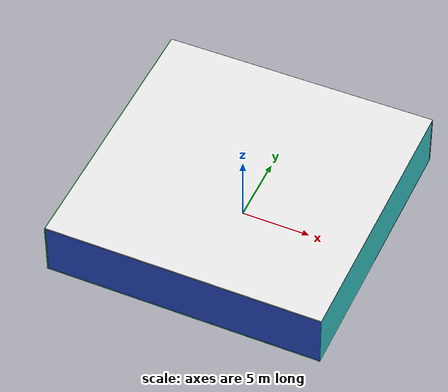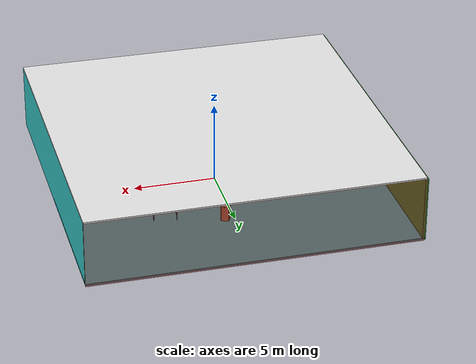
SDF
<sdf version="1.4">
 <world name="default">
  <physics type="ode">
   <max_step_size>0.001</max_step_size>
   <real_time_factor>1</real_time_factor>
   <real_time_update_rate>1000</real_time_update_rate>
   <gravity>0 0 -9.8</gravity>
  </physics>
  <scene><ambient>0.4 0.4 0.4 1</ambient><background>0.7 0.7 0.7 1</background><shadows>1</shadows></scene>
  <model name="Surrounding">
   <static>1</static>
   <link name="Ceiling">
    <collision name="Ceiling_Collision"><geometry><box><size>20 20 0.1</size></box></geometry></collision>
    <visual name="Ceiling_Visual">
     <geometry><box><size>20 20 0.1</size></box></geometry>
     <material>
      <script><uri>file://media/materials/scripts/gazebo.material</uri><name>Gazebo/WhiteGlow</name></script>
     </material>
    </visual>
    <pose>0 0 4.05 0 0 0</pose>
   </link>
   <link name="Wall_South">
    <collision name="Wall_South_Collision">
     <geometry><box><size>20 0 4</size></box></geometry>
     <pose>0 0 2 0 -0 0</pose>
    </collision>
    <visual name="Wall_South_Visual">
     <pose>0 0 2 0 -0 0</pose>
     <geometry><box><size>20 0 4</size></box></geometry>
     <material>
      <script><uri>file://media/materials/scripts/gazebo.material</uri><name>Gazebo/BlueLaser</name></script>
     </material>
    </visual>
    <velocity_decay><linear>0</linear><angular>0</angular></velocity_decay>
    <pose>0 -10 0 0 -0 0</pose>
   </link>
   <link name="Wall_East">
    <collision name="Wall_21_Collision">
     <geometry><box><size>20 0 4</size></box></geometry>
     <pose>0 0 2 0 -0 0</pose>
    </collision>
    <visual name="Wall_21_Visual">
     <pose>0 0 2 0 -0 0</pose>
     <geometry><box><size>20 0 4</size></box></geometry>
     <material>
      <script><uri>file://media/materials/scripts/gazebo.material</uri><name>Gazebo/Turquoise</name></script>
     </material>
    </visual>
    <velocity_decay><linear>0</linear><angular>0</angular></velocity_decay>
    <pose>10 0 0 0 -0 1.5708</pose>
   </link>
   <link name="Wall_North">
    <collision name="Wall_22_Collision">
     <geometry><box><size>20 0.2 4</size></box></geometry>
     <pose>0 0 2 0 -0 0</pose>
    </collision>
    <visual name="Wall_22_Visual">
     <pose>0 0 2 0 -0 0</pose>
     <geometry><box><size>20 0.2 4</size></box></geometry>
     <material>
      <script><uri>file://media/materials/scripts/gazebo.material</uri><name>Gazebo/RedTransparent</name></script>
     </material>
    </visual>
    <velocity_decay><linear>0</linear><angular>0</angular></velocity_decay>
    <pose>0 10 0 0 -0 0</pose>
   </link>
   <link name="Wall_West">
    <collision name="Wall_23_Collision">
     <geometry><box><size>20 0.2 4</size></box></geometry>
     <pose>0 0 2 0 -0 0</pose>
    </collision>
    <visual name="Wall_23_Visual">
     <pose>0 0 2 0 -0 0</pose>
     <geometry><box><size>20 0.2 4</size></box></geometry>
     <material>
      <script><uri>file://media/materials/scripts/gazebo.material</uri><name>Gazebo/GreenGlow</name></script>
     </material>
    </visual>
    <velocity_decay><linear>0</linear><angular>0</angular></velocity_decay>
    <pose>-10 0 0 0 0 -1.5708</pose>
   </link>
   <link name="Ground_link">
    <collision name="collision">
     <pose>0 0 .05 0 -0 0</pose>
     <geometry><box><size>20 20 0.1</size></box></geometry>
    </collision>
    <visual name="visual">
     <pose>0 0 .05 0 -0 0</pose>
     <geometry><box><size>20 20 0.1</size></box></geometry>
     <material>
      <script><uri>file://media/materials/scripts/gazebo.material</uri><name>Gazebo/Turquoise</name></script>
     </material>
    </visual>
   </link>
   <static>1</static>
  </model>
  <spherical_coordinates>
   <surface_model>EARTH_WGS84</surface_model>
   <latitude_deg>0</latitude_deg>
   <longitude_deg>0</longitude_deg>
   <elevation>0</elevation>
   <heading_deg>0</heading_deg>
  </spherical_coordinates>
  <light name="lightball_0" type="diffuse">
   <diffuse>0.8 0.8 0.8 1</diffuse>
   <specular>0.2 0.2 0.2 1</specular>
   <attenuation>
    <range>100</range>
    <constant>0.7</constant>
    <linear>0.01</linear>
    <quadratic>0.001</quadratic>
   </attenuation>
   <direction>-0.5 0.1 -0.9</direction>
   <pose>-7.53746787379 -2.62742450167 3.29254285929 0 0 0</pose>
  </light>
  <light name="lightball_1" type="diffuse">
   <diffuse>0.8 0.8 0.8 1</diffuse>
   <specular>0.2 0.2 0.2 1</specular>
   <attenuation>
    <range>100</range>
    <constant>0.7</constant>
    <linear>0.01</linear>
    <quadratic>0.001</quadratic>
   </attenuation>
   <direction>-0.5 0.1 -0.9</direction>
   <pose>-3.41802707899 -1.54042022033 2.14997333021 0 0 0</pose>
  </light>
  <light name="lightball_2" type="diffuse">
   <diffuse>0.8 0.8 0.8 1</diffuse>
   <specular>0.2 0.2 0.2 1</specular>
   <attenuation>
    <range>100</range>
    <constant>0.7</constant>
    <linear>0.01</linear>
    <quadratic>0.001</quadratic>
   </attenuation>
   <direction>-0.5 0.1 -0.9</direction>
   <pose>-5.90884581743 -4.58841538105 0.623708003857 0 0 0</pose>
  </light>
  <light name="lightball_3" type="diffuse">
   <diffuse>0.8 0.8 0.8 1</diffuse>
   <specular>0.2 0.2 0.2 1</specular>
   <attenuation>
    <range>100</range>
    <constant>0.7</constant>
    <linear>0.01</linear>
    <quadratic>0.001</quadratic>
   </attenuation>
   <direction>-0.5 0.1 -0.9</direction>
   <pose>-7.13011862574 3.44720810885 2.45149359907 0 0 0</pose>
  </light>
  <light name="lightball_4" type="diffuse">
   <diffuse>0.8 0.8 0.8 1</diffuse>
   <specular>0.2 0.2 0.2 1</specular>
   <attenuation>
    <range>100</range>
    <constant>0.7</constant>
    <linear>0.01</linear>
    <quadratic>0.001</quadratic>
   </attenuation>
   <direction>-0.5 0.1 -0.9</direction>
   <pose>-9.56207243484 1.69671721714 3.71707221111 0 0 0</pose>
  </light>
  <light name="lightball_5" type="diffuse">
   <diffuse>0.8 0.8 0.8 1</diffuse>
   <specular>0.2 0.2 0.2 1</specular>
   <attenuation>
    <range>100</range>
    <constant>0.7</constant>
    <linear>0.01</linear>
    <quadratic>0.001</quadratic>
   </attenuation>
   <direction>-0.5 0.1 -0.9</direction>
   <pose>0.529682717487 -4.25515272321 2.7315363004 0 0 0</pose>
  </light>
  <light name="lightball_6" type="diffuse">
   <diffuse>0.8 0.8 0.8 1</diffuse>
   <specular>0.2 0.2 0.2 1</specular>
   <attenuation>
    <range>100</range>
    <constant>0.7</constant>
    <linear>0.01</linear>
    <quadratic>0.001</quadratic>
   </attenuation>
   <direction>-0.5 0.1 -0.9</direction>
   <pose>-4.00167114061 8.81212953877 2.80608686337 0 0 0</pose>
  </light>
  <light name="lightball_7" type="diffuse">
   <diffuse>0.8 0.8 0.8 1</diffuse>
   <specular>0.2 0.2 0.2 1</specular>
   <attenuation>
    <range>100</range>
    <constant>0.7</constant>
    <linear>0.01</linear>
    <quadratic>0.001</quadratic>
   </attenuation>
   <direction>-0.5 0.1 -0.9</direction>
   <pose>2.20949429048 1.23290143149 2.32988723856 0 0 0</pose>
  </light>
  <light name="lightball_8" type="diffuse">
   <diffuse>0.8 0.8 0.8 1</diffuse>
   <specular>0.2 0.2 0.2 1</specular>
   <attenuation>
    <range>100</range>
    <constant>0.7</constant>
    <linear>0.01</linear>
    <quadratic>0.001</quadratic>
   </attenuation>
   <direction>-0.5 0.1 -0.9</direction>
   <pose>-7.28099170038 -2.53876209961 1.89762803983 0 0 0</pose>
  </light>
  <light name="lightball_9" type="diffuse">
   <diffuse>0.8 0.8 0.8 1</diffuse>
   <specular>0.2 0.2 0.2 1</specular>
   <attenuation>
    <range>100</range>
    <constant>0.7</constant>
    <linear>0.01</linear>
    <quadratic>0.001</quadratic>
   </attenuation>
   <direction>-0.5 0.1 -0.9</direction>
   <pose>-4.33320827097 -7.66822014484 1.20867068491 0 0 0</pose>
  </light>
  <light name="lightball_10" type="diffuse">
   <diffuse>0.8 0.8 0.8 1</diffuse>
   <specular>0.2 0.2 0.2 1</specular>
   <attenuation>
    <range>100</range>
    <constant>0.7</constant>
    <linear>0.01</linear>
    <quadratic>0.001</quadratic>
   </attenuation>
   <direction>-0.5 0.1 -0.9</direction>
   <pose>-7.37256162273 -1.20311273536 1.2118231376 0 0 0</pose>
  </light>
  <light name="lightball_11" type="diffuse">
   <diffuse>0.8 0.8 0.8 1</diffuse>
   <specular>0.2 0.2 0.2 1</specular>
   <attenuation>
    <range>100</range>
    <constant>0.7</constant>
    <linear>0.01</linear>
    <quadratic>0.001</quadratic>
   </attenuation>
   <direction>-0.5 0.1 -0.9</direction>
   <pose>2.87601806895 -8.71865991508 2.74299344617 0 0 0</pose>
  </light>
  <include><uri>model://cabinet</uri><pose>0.601164886841 5.0322712879 0 0 0 1.11725245769</pose></include>
  <include>
   <uri>model://robocup_3Dsim_goal</uri>
   <pose>3.67971002572 -1.32594818118 0 0 0 0.0499726855882</pose>
  </include>
  <include><uri>model://table</uri><pose>4.02164935311 3.93541499764 0 0 0 2.95806399737</pose></include>
  <include><uri>model://cabinet</uri><pose>6.36543779029 -4.14688933969 0 0 0 0.360300549537</pose></include>
 </world>
</sdf>

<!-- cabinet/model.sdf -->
<sdf version="1.5">
  <model name="cabinet">
    <static>true</static>
    <link name="cabinet_bottom_plate">
      <inertial>
        <pose>0 0 -1 0 0 0</pose>
        <inertia>
          <ixx>2.050000</ixx>
          <ixy>0</ixy>
          <ixz>0</ixz>
          <iyy>2.050000</iyy>
          <iyz>0</iyz>
          <izz>2.050000</izz>
        </inertia>
        <mass>25.000000</mass>
      </inertial>
      <collision name="cabinet_bottom_plate_geom">
        <pose>0 0 0.010000 0 0 0</pose>
        <geometry>
          <box>
            <size>0.450000 0.450000 0.020000</size>
          </box>
        </geometry>
      </collision>
      <visual name="cabinet_bottom_plate_geom_visual">
        <pose>0 0 0.010000 0 0 0</pose>
        <geometry>
          <box>
            <size>0.450000 0.450000 0.020000</size>
          </box>
        </geometry>
        <material>
          <script>
            <uri>model://media/materials/scripts/gazebo.material</uri>
            <name>Gazebo/Wood</name>
          </script>
        </material>
      </visual>
      <collision name="cabinet_bottom_plate_geom_cabinet_back_plate">
        <pose>0.235000 0 0.510000 0 0 0</pose>
        <geometry>
          <box>
            <size>0.020000 0.450000 1.020000</size>
          </box>
        </geometry>
      </collision>
      <visual name="cabinet_bottom_plate_geom_cabinet_back_plate_visual">
        <pose>0.235000 0 0.510000 0 0 0</pose>
        <geometry>
          <box>
            <size>0.020000 0.450000 1.020000</size>
          </box>
        </geometry>
        <material>
          <script>
            <uri>model://media/materials/scripts/gazebo.material</uri>
            <name>Gazebo/Wood</name>
          </script>
        </material>
      </visual>
      <collision name="cabinet_bottom_plate_geom_cabinet_left_plate">
        <pose>0 0.235000 0.510000 0 0 0</pose>
        <geometry>
          <box>
            <size>0.450000 0.020000 1.020000</size>
          </box>
        </geometry>
      </collision>
      <visual name="cabinet_bottom_plate_geom_cabinet_left_plate_visual">
        <pose>0 0.235000 0.510000 0 0 0</pose>
        <geometry>
          <box>
            <size>0.450000 0.020000 1.020000</size>
          </box>
        </geometry>
        <material>
          <script>
            <uri>model://media/materials/scripts/gazebo.material</uri>
            <name>Gazebo/Wood</name>
          </script>
        </material>
      </visual>
      <collision name="cabinet_bottom_plate_geom_cabinet_middle_plate">
        <pose>0 0 0.510000 0 0 0</pose>
        <geometry>
          <box>
            <size>0.450000 0.450000 0.020000</size>
          </box>
        </geometry>
      </collision>
      <visual name="cabinet_bottom_plate_geom_cabinet_middle_plate_visual">
        <pose>0 0 0.510000 0 0 0</pose>
        <geometry>
          <box>
            <size>0.450000 0.450000 0.020000</size>
          </box>
        </geometry>
        <material>
          <script>
            <uri>model://media/materials/scripts/gazebo.material</uri>
            <name>Gazebo/Wood</name>
          </script>
        </material>
      </visual>
      <collision name="cabinet_bottom_plate_geom_cabinet_right_plate">
        <pose>0 -0.235000 0.510000 0 0 0</pose>
        <geometry>
          <box>
            <size>0.450000 0.020000 1.020000</size>
          </box>
        </geometry>
      </collision>
      <visual name="cabinet_bottom_plate_geom_cabinet_right_plate_visual">
        <pose>0 -0.235000 0.510000 0 0 0</pose>
        <geometry>
          <box>
            <size>0.450000 0.020000 1.020000</size>
          </box>
        </geometry>
        <material>
          <script>
            <uri>model://media/materials/scripts/gazebo.material</uri>
            <name>Gazebo/Wood</name>
          </script>
        </material>
      </visual>
      <collision name="cabinet_bottom_plate_geom_cabinet_top_plate">
        <pose>0 0 1.010000 0 0 0</pose>
        <geometry>
          <box>
            <size>0.450000 0.450000 0.020000</size>
          </box>
        </geometry>
      </collision>
      <visual name="cabinet_bottom_plate_geom_cabinet_top_plate_visual">
        <pose>0 0 1.010000 0 0 0</pose>
        <geometry>
          <box>
            <size>0.450000 0.450000 0.020000</size>
          </box>
        </geometry>
        <material>
          <script>
            <uri>model://media/materials/scripts/gazebo.material</uri>
            <name>Gazebo/Wood</name>
          </script>
        </material>
      </visual>
    </link>
  </model>
</sdf>

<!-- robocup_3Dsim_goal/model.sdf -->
<sdf version="1.5">
  <model name="robocup_3d_goal">
    <static>true</static>
    <link name="left_post">
      <pose>0 1.05 0.45 0 0 0</pose>
      <collision name="collision">
        <geometry>
          <cylinder>
            <radius>0.05</radius>
            <length>0.9</length>
          </cylinder>
        </geometry>
      </collision>
      <visual name="visual">
        <geometry>
          <cylinder>
            <radius>0.05</radius>
            <length>0.9</length>
          </cylinder>
        </geometry>
        <material>
          <script>
            <uri>file://media/materials/scripts/gazebo.material</uri>
            <name>Gazebo/ZincYellow</name>
          </script>
        </material>
      </visual>
    </link>
    <link name="left_support_horiz_lower">
      <pose>0.30 1.05 0.01 0 0 0</pose>
      <collision name="collision">
        <geometry>
          <box>
            <size>0.50 0.02 0.02</size>
          </box>
        </geometry>
      </collision>
      <visual name="visual">
        <geometry>
          <box>
            <size>0.50 0.02 0.02</size>
          </box>
        </geometry>
        <material>
          <script>
            <uri>file://media/materials/scripts/gazebo.material</uri>
            <name>Gazebo/White</name>
          </script>
        </material>
      </visual>
    </link>
    <link name="left_support_horiz_upper">
      <pose>0.30 1.05 0.79 0 0 0</pose>
      <collision name="collision">
        <geometry>
          <box>
            <size>0.50 0.02 0.02</size>
          </box>
        </geometry>
      </collision>
      <visual name="visual">
        <geometry>
          <box>
            <size>0.50 0.02 0.02</size>
          </box>
        </geometry>
        <material>
          <script>
            <uri>file://media/materials/scripts/gazebo.material</uri>
            <name>Gazebo/White</name>
          </script>
        </material>
      </visual>
    </link>
    <link name="left_support_vertical">
      <pose>0.56 1.05 0.4 0 1.5708 0</pose>
      <collision name="collision">
        <geometry>
          <box>
            <size>0.80 0.02 0.02</size>
          </box>
        </geometry>
      </collision>
      <visual name="visual">
        <geometry>
          <box>
            <size>0.80 0.02 0.02</size>
          </box>
        </geometry>
        <material>
          <script>
            <uri>file://media/materials/scripts/gazebo.material</uri>
            <name>Gazebo/White</name>
          </script>
        </material>
      </visual>
    </link>
    <link name="right_support_horiz_lower">
      <pose>0.30 -1.05 0.01 0 0 0</pose>
      <collision name="collision">
        <geometry>
          <box>
            <size>0.50 0.02 0.02</size>
          </box>
        </geometry>
      </collision>
      <visual name="visual">
        <geometry>
          <box>
            <size>0.50 0.02 0.02</size>
          </box>
        </geometry>
        <material>
          <script>
            <uri>file://media/materials/scripts/gazebo.material</uri>
            <name>Gazebo/White</name>
          </script>
        </material>
      </visual>
    </link>
    <link name="right_support_horiz_upper">
      <pose>0.30 -1.05 0.79 0 0 0</pose>
      <collision name="collision">
        <geometry>
          <box>
            <size>0.50 0.02 0.02</size>
          </box>
        </geometry>
      </collision>
      <visual name="visual">
        <geometry>
          <box>
            <size>0.50 0.02 0.02</size>
          </box>
        </geometry>
        <material>
          <script>
            <uri>file://media/materials/scripts/gazebo.material</uri>
            <name>Gazebo/White</name>
          </script>
        </material>
      </visual>
    </link>
    <link name="right_support_vertical">
      <pose>0.56 -1.05 0.4 0 1.5708 0</pose>
      <collision name="collision">
        <geometry>
          <box>
            <size>0.80 0.02 0.02</size>
          </box>
        </geometry>
      </collision>
      <visual name="visual">
        <geometry>
          <box>
            <size>0.80 0.02 0.02</size>
          </box>
        </geometry>
        <material>
          <script>
            <uri>file://media/materials/scripts/gazebo.material</uri>
            <name>Gazebo/White</name>
          </script>
        </material>
      </visual>
    </link>
    <link name="center_support_horiz_lower">
      <pose>0.56 0 0.01 0 1.5708 0</pose>
      <collision name="collision">
        <geometry>
          <box>
            <size>0.02 2.08 0.02</size>
          </box>
        </geometry>
      </collision>
      <visual name="visual">
        <geometry>
          <box>
            <size>0.02 2.08 0.02</size>
          </box>
        </geometry>
        <material>
          <script>
            <uri>file://media/materials/scripts/gazebo.material</uri>
            <name>Gazebo/White</name>
          </script>
        </material>
      </visual>
    </link>
    <link name="center_support_horiz_upper">
      <pose>0.56 0 0.79 0 1.5708 0</pose>
      <collision name="collision">
        <geometry>
          <box>
            <size>0.02 2.08 0.02</size>
          </box>
        </geometry>
      </collision>
      <visual name="visual">
        <geometry>
          <box>
            <size>0.02 2.08 0.02</size>
          </box>
        </geometry>
        <material>
          <script>
            <uri>file://media/materials/scripts/gazebo.material</uri>
            <name>Gazebo/White</name>
          </script>
        </material>
      </visual>
    </link>
    <link name="right_post">
      <pose>0 -1.05 0.45 0 0 0</pose>
      <collision name="collision">
        <geometry>
          <cylinder>
            <radius>0.05</radius>
            <length>0.9</length>
          </cylinder>
        </geometry>
      </collision>
      <visual name="visual">
        <geometry>
          <cylinder>
            <radius>0.05</radius>
            <length>0.9</length>
          </cylinder>
        </geometry>
        <material>
          <script>
            <uri>file://media/materials/scripts/gazebo.material</uri>
            <name>Gazebo/ZincYellow</name>
          </script>
        </material>
      </visual>
    </link>
    <link name="crossbar">
      <pose>0 0 0.85 1.57 1.57 0</pose>
      <collision name="collision">
        <geometry>
          <cylinder>
            <radius>0.05</radius>
            <length>2.0</length>
          </cylinder>
        </geometry>
      </collision>
      <visual name="visual">
        <geometry>
          <cylinder>
            <radius>0.05</radius>
            <length>2.0</length>
          </cylinder>
        </geometry>
        <material>
          <script>
            <uri>file://media/materials/scripts/gazebo.material</uri>
            <name>Gazebo/ZincYellow</name>
          </script>
        </material>
      </visual>
    </link>
    <link name="center_net">
      <pose>0.56 0 0.40 0 0 0</pose>
      <collision name="collision">
        <geometry>
          <box>
            <size>0.01 2.1 0.80</size>
          </box>
        </geometry>
      </collision>
      <visual name="visual">
        <geometry>
          <box>
            <size>0.01 2.1 0.80</size>
          </box>
        </geometry>
        <material>
          <script>
            <uri>model://../model_source/models/robocup09_spl_field/materials/scripts/</uri>
            <uri>model://../model_source/models/robocup09_spl_field/materials/textures/</uri>
            <name>RoboCup/Net</name>
          </script>
        </material>
      </visual>
    </link>
    <link name="left_net">
      <pose>0.30 1.05 0.40 0 0 0</pose>
      <collision name="collision">
        <geometry>
          <box>
            <size>0.50 0.01 0.76</size>
          </box>
        </geometry>
      </collision>
      <visual name="visual">
        <geometry>
          <box>
            <size>0.50 0.01 0.76</size>
          </box>
        </geometry>
        <material>
          <script>
            <uri>model://../model_source/models/robocup09_spl_field/materials/scripts/</uri>
            <uri>model://../model_source/models/robocup09_spl_field/materials/textures/</uri>
            <name>RoboCup/Net</name>
          </script>
        </material>
      </visual>
    </link>
    <link name="right_net">
      <pose>0.30 -1.05 0.40 0 0 0</pose>
      <collision name="collision">
        <geometry>
          <box>
            <size>0.50 0.01 0.76</size>
          </box>
        </geometry>
      </collision>
      <visual name="visual">
        <geometry>
          <box>
            <size>0.50 0.01 0.76</size>
          </box>
        </geometry>
        <material>
          <script>
            <uri>model://../model_source/models/robocup09_spl_field/materials/scripts/</uri>
            <uri>model://../model_source/models/robocup09_spl_field/materials/textures/</uri>
            <name>RoboCup/Net</name>
          </script>
        </material>
      </visual>
    </link>
  </model>
</sdf>

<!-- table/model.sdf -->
<sdf version="1.5">
  <model name="table">
    <static>true</static>
    <link name="link">
      <collision name="surface">
        <pose>0 0 1.0 0 0 0</pose>
        <geometry>
          <box>
            <size>1.5 0.8 0.03</size>
          </box>
        </geometry>
        <surface>
          <friction>
            <ode>
              <mu>0.6</mu>
              <mu2>0.6</mu2>
            </ode>
          </friction>
        </surface>
      </collision>
      <visual name="visual1">
        <pose>0 0 1.0 0 0 0</pose>
        <geometry>
          <box>
            <size>1.5 0.8 0.03</size>
          </box>
        </geometry>
        <material>
          <script>
            <uri>model://media/materials/scripts/gazebo.material</uri>
            <name>Gazebo/Wood</name>
          </script>
        </material>
      </visual>
      <collision name="front_left_leg">
        <pose>0.68 0.38 0.5 0 0 0</pose>
        <geometry>
          <cylinder>
            <radius>0.02</radius>
            <length>1.0</length>
          </cylinder>
        </geometry>
      </collision>
      <visual name="front_left_leg">
        <pose>0.68 0.38 0.5 0 0 0</pose>
        <geometry>
          <cylinder>
            <radius>0.02</radius>
            <length>1.0</length>
          </cylinder>
        </geometry>
        <material>
          <script>
            <uri>model://media/materials/scripts/gazebo.material</uri>
            <name>Gazebo/Grey</name>
          </script>
        </material>
      </visual>
      <collision name="front_right_leg">
        <pose>0.68 -0.38 0.5 0 0 0</pose>
        <geometry>
          <cylinder>
            <radius>0.02</radius>
            <length>1.0</length>
          </cylinder>
        </geometry>
      </collision>
      <visual name="front_right_leg">
        <pose>0.68 -0.38 0.5 0 0 0</pose>
        <geometry>
          <cylinder>
            <radius>0.02</radius>
            <length>1.0</length>
          </cylinder>
        </geometry>
        <material>
          <script>
            <uri>model://media/materials/scripts/gazebo.material</uri>
            <name>Gazebo/Grey</name>
          </script>
        </material>
      </visual>
      <collision name="back_right_leg">
        <pose>-0.68 -0.38 0.5 0 0 0</pose>
        <geometry>
          <cylinder>
            <radius>0.02</radius>
            <length>1.0</length>
          </cylinder>
        </geometry>
      </collision>
      <visual name="back_right_leg">
        <pose>-0.68 -0.38 0.5 0 0 0</pose>
        <geometry>
          <cylinder>
            <radius>0.02</radius>
            <length>1.0</length>
          </cylinder>
        </geometry>
        <material>
          <script>
            <uri>model://media/materials/scripts/gazebo.material</uri>
            <name>Gazebo/Grey</name>
          </script>
        </material>
      </visual>
      <collision name="back_left_leg">
        <pose>-0.68 0.38 0.5 0 0 0</pose>
        <geometry>
          <cylinder>
            <radius>0.02</radius>
            <length>1.0</length>
          </cylinder>
        </geometry>
      </collision>
      <visual name="back_left_leg">
        <pose>-0.68 0.38 0.5 0 0 0</pose>
        <geometry>
          <cylinder>
            <radius>0.02</radius>
            <length>1.0</length>
          </cylinder>
        </geometry>
        <material>
          <script>
            <uri>model://media/materials/scripts/gazebo.material</uri>
            <name>Gazebo/Grey</name>
          </script>
        </material>
      </visual>
    </link>
  </model>
</sdf>
